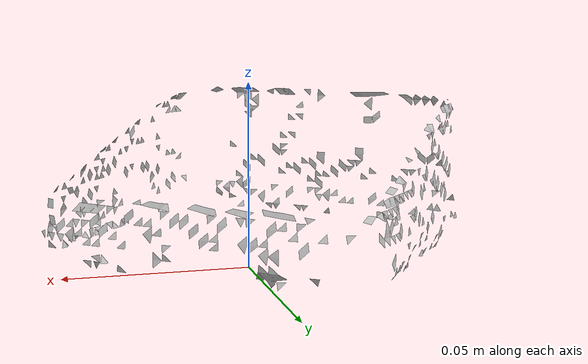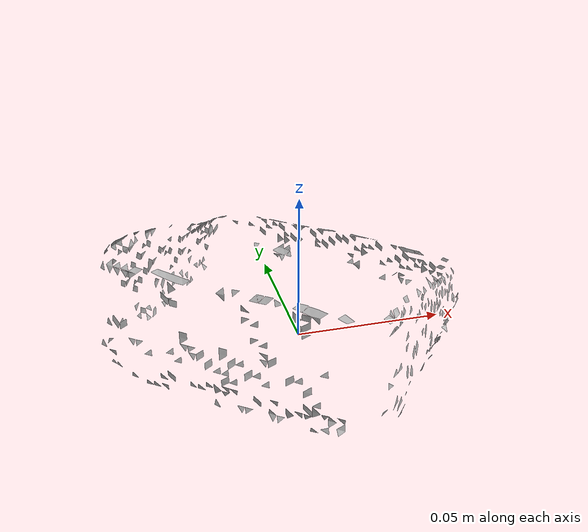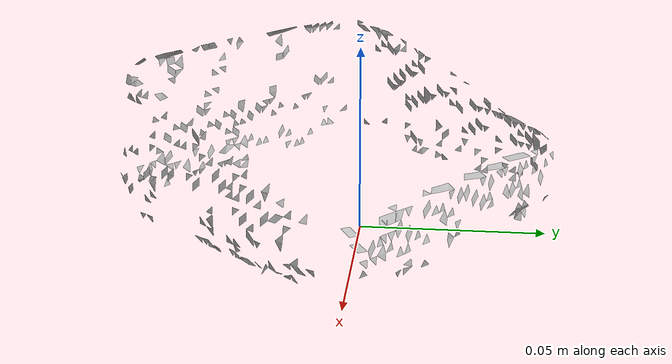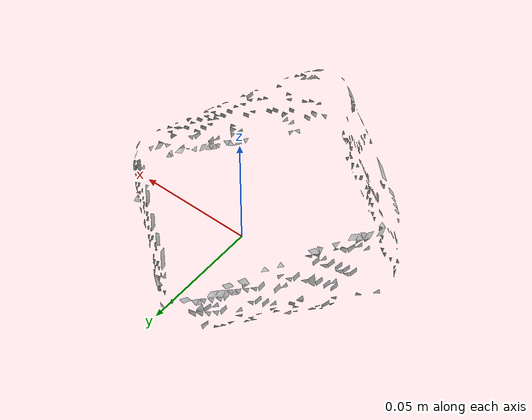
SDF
<?xml version='1.0'?>
<sdf version="1.4">
  <model name="timer">
    <static>false</static>
    <link name="link">
      <inertial>
        <pose>-0.008380210128086771 -0.01007806111086999 0.023095710695250148 -1.4859662786002954 -1.4306219623776584 0.8011890136695242</pose>
        <mass>0.00022408566973574845</mass>
        <inertia>
          <ixx>2.7428124558013425e-07</ixx>
          <ixy>9.160333604582873e-24</ixy>
          <ixz>-3.801111636173036e-23</ixz>
          <iyy>1.595269665450607e-07</iyy>
          <iyz>1.484900645206676e-23</iyz>
          <izz>1.345337637709678e-07</izz>
        </inertia>
      </inertial>
      <collision name="collision">
        <geometry>
          <mesh>
            <!-- Use a downsampled mesh for collisions -->
            <uri>model://076_timer/tsdf/textured.obj</uri>
	        </mesh>
        </geometry>
        <surface>
      </surface>
      </collision>
      <visual name="visual">
        <geometry>
          <mesh>
            <uri>model://076_timer/tsdf/textured.obj</uri>
	        </mesh>
        </geometry>
        <material>
          <script>
            <uri>model://076_timer/timer.material</uri>
            <name>timer</name>
          </script>
        </material>
      </visual>
    </link>
  </model>
</sdf>
